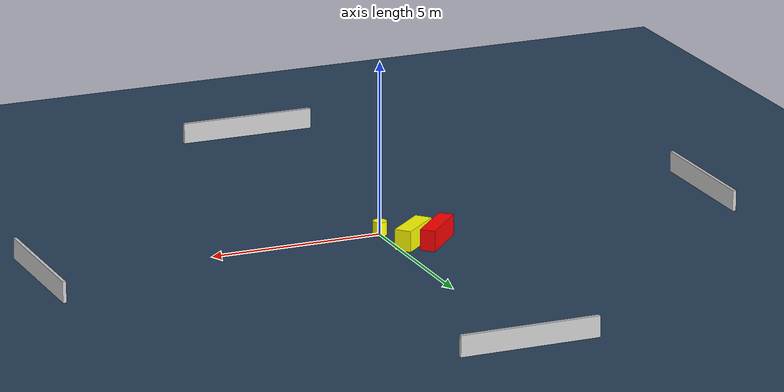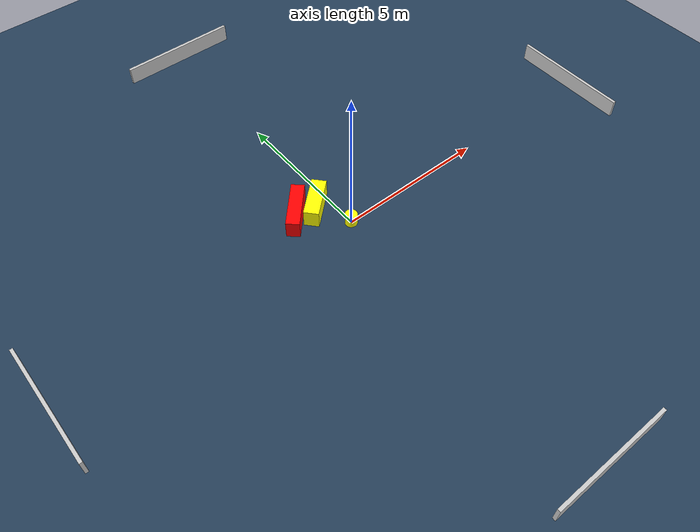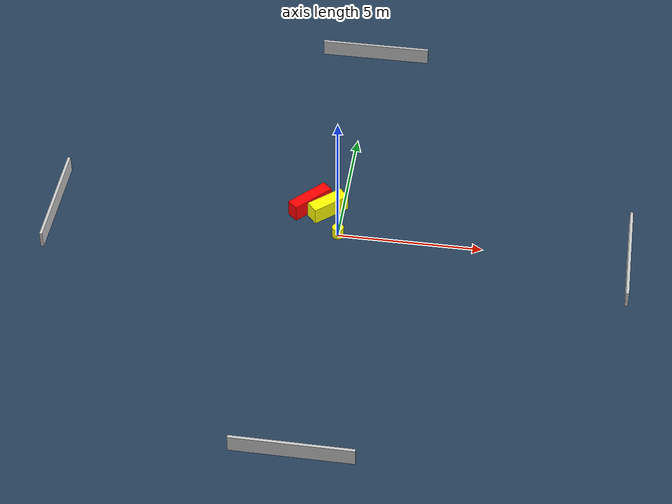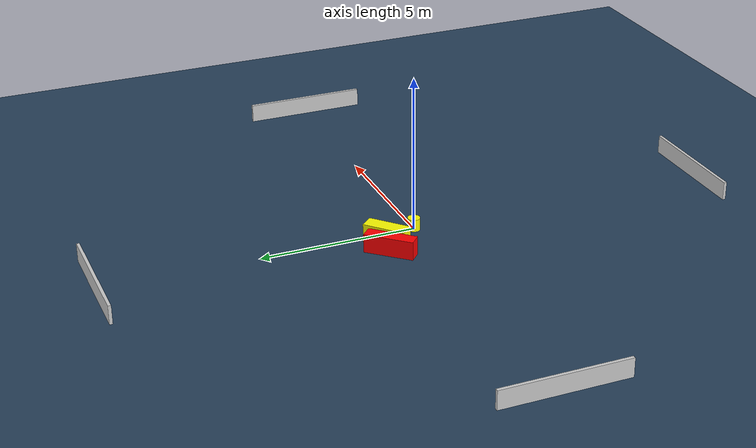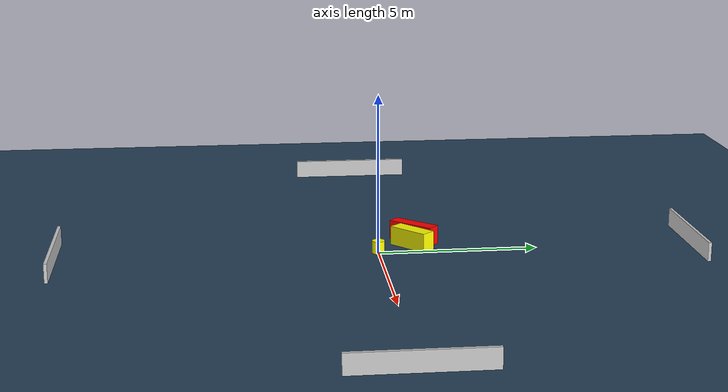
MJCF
<?xml version="1.0" ?>
<mujoco model="generated_environment">
  <option timestep="0.01" integrator="RK4" cone="elliptic"/>
  <default>
    <geom density="1"/>
  </default>
  <asset>
    <texture builtin="gradient" height="3072" name="skybox" rgb1="0.3 0.5 0.7" rgb2="0 0 0" type="skybox" width="512"/>
    <texture builtin="checker" height="300" name="groundplane" rgb1="0.2 0.3 0.4" rgb2="0.1 0.2 0.3" type="2d" width="300"/>
    <material name="groundplane" reflectance="0.2" texrepeat="5 5" texture="groundplane"/>
  </asset>
  <worldbody>
    <light dir="0 0 -1" directional="true" pos="0 0 1.5"/>
    <geom condim="3" friction="0.5 0.005 0.001" material="groundplane" name="floor" pos="0 0 0" size="0 0 0.05" type="plane"/>
    <body name="walls">
      <geom name="wall_1" condim="4" pos="-10.0 0.0 0.3" rgba="0.800000011920929 0.800000011920929 0.800000011920929 1.0" size="0.05 2.0 0.3" type="box"/>
      <geom name="wall_2" condim="4" pos="10.0 0.0 0.3" rgba="0.800000011920929 0.800000011920929 0.800000011920929 1.0" size="0.05 2.0 0.3" type="box"/>
      <geom name="wall_3" condim="4" pos="0.0 -10.0 0.3" rgba="0.800000011920929 0.800000011920929 0.800000011920929 1.0" size="2.0 0.05 0.3" type="box"/>
      <geom name="wall_4" condim="4" pos="0.0 10.0 0.3" rgba="0.800000011920929 0.800000011920929 0.800000011920929 1.0" size="2.0 0.05 0.3" type="box"/>
    </body>
    <body name="robot">
      <joint name="joint_x" type="slide" pos="0 0 0" axis="1 0 0"/>
      <joint name="joint_y" type="slide" pos="0 0 0" axis="0 1 0"/>
      <geom name="robot" type="cylinder" pos="0.0 0.0 0.2" size="0.2 0.2 0.0" mass="5.0" friction="1.0 0.005 0.0001" condim="4" rgba="1.0 1.0 0.0 1.0"/>
    </body>
    <body name="obstacle_1_movable">
      <geom name="obstacle_1_movable" condim="4" pos="-0.5195481220532613 1.1247145066885402 0.3" euler="0 0 311.82085654128673" friction="0.0 0.005 0.001" rgba="1.0 1.0 0.0 1.0" size="0.24162194733332795 0.6848354881315167 0.3" type="box" mass="0.1"/>
      <joint type="free"/>
    </body>
    <body name="obstacle_2_static">
      <geom name="obstacle_2_static" condim="4" pos="-1.1755479699477502 1.264424228019189 0.3" euler="0 0 227.30499604321537" friction="0.0 0.005 0.001" rgba="1.0 0.0 0.0 1.0" size="0.7908176122614377 0.21655036012030524 0.3" type="box"/>
    </body>
  </worldbody>
  <actuator>
    <motor name="actuator_x" joint="joint_x" gear="1" ctrlrange="-1 1"/>
    <motor name="actuator_y" joint="joint_y" gear="1" ctrlrange="-1 1"/>
  </actuator>
</mujoco>
